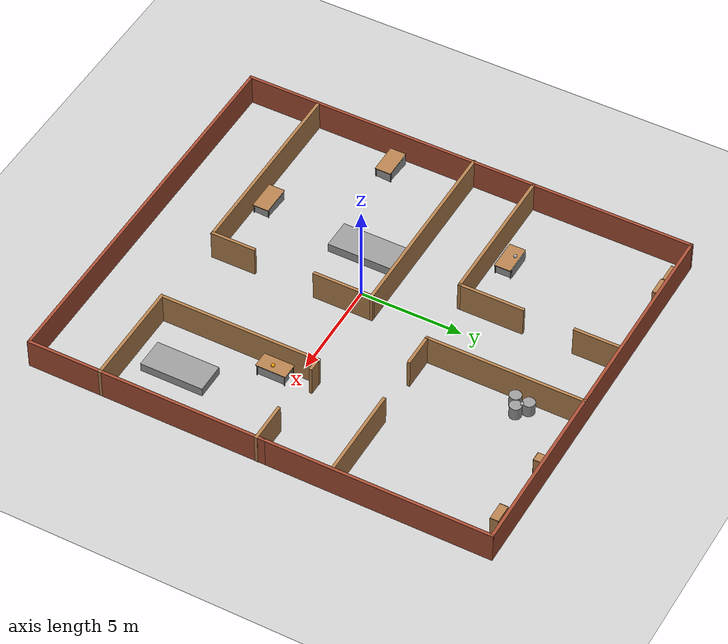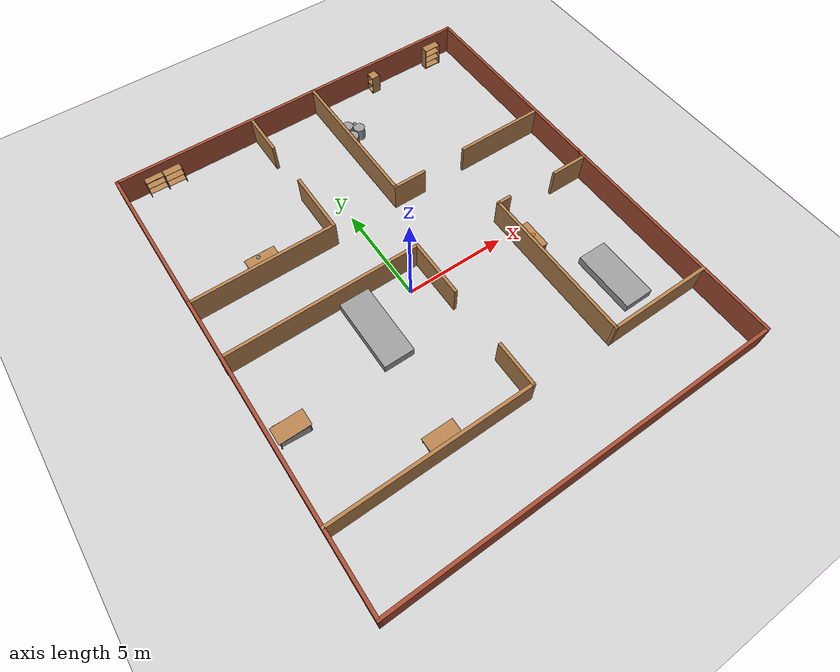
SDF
<sdf version="1.6">
 <world name="default">
  <light name="sun" type="directional">
   <pose>0 0 10 0 -0 0</pose>
   <diffuse>0.8 0.8 0.8 1</diffuse>
   <specular>0.2 0.2 0.2 1</specular>
   <attenuation>
    <range>1000</range>
    <constant>0.9</constant>
    <linear>0.01</linear>
    <quadratic>0.001</quadratic>
   </attenuation>
   <direction>-0.5 0.1 -0.9</direction>
  </light>
  <model name="ground_plane">
   <static>1</static>
   <link name="link">
    <collision name="collision">
     <geometry><plane><normal>0 0 1</normal><size>100 100</size></plane></geometry>
     <surface>
      <contact><collide_bitmask>65535</collide_bitmask></contact>
      <friction><ode><mu>100</mu><mu2>50</mu2></ode></friction>
     </surface>
    </collision>
    <visual name="visual">
     <cast_shadows>0</cast_shadows>
     <geometry><plane><normal>0 0 1</normal><size>100 100</size></plane></geometry>
     <material>
      <script><uri>file://media/materials/scripts/gazebo.material</uri><name>Gazebo/Grey</name></script>
     </material>
    </visual>
   </link>
  </model>
  <gravity>0 0 -9.8</gravity>
  <magnetic_field>6e-06 2.3e-05 -4.2e-05</magnetic_field>
  <atmosphere type="adiabatic"/>
  <physics name="default_physics" default="0" type="ode">
   <max_step_size>0.001</max_step_size>
   <real_time_factor>1</real_time_factor>
   <real_time_update_rate>1000</real_time_update_rate>
  </physics>
  <scene><ambient>0.4 0.4 0.4 1</ambient><background>0.7 0.7 0.7 1</background><shadows>1</shadows></scene>
  <audio><device>default</device></audio>
  <spherical_coordinates>
   <surface_model>EARTH_WGS84</surface_model>
   <latitude_deg>0</latitude_deg>
   <longitude_deg>0</longitude_deg>
   <elevation>0</elevation>
   <heading_deg>0</heading_deg>
  </spherical_coordinates>
  <model name="FetchENV">
   <pose>1.08764 0.75581 -1.01511 0 -0 0</pose>
   <link name="Wall_100">
    <collision name="Wall_100_Collision">
     <geometry><box><size>8 0.15 2.5</size></box></geometry>
     <pose>0 0 1.25 0 -0 0</pose>
    </collision>
    <visual name="Wall_100_Visual">
     <pose>0 0 1.25 0 -0 0</pose>
     <geometry><box><size>8 0.15 2.5</size></box></geometry>
     <material>
      <script><uri>file://media/materials/scripts/gazebo.material</uri><name>Gazebo/Bricks</name></script>
      <ambient>1 1 1 1</ambient>
     </material>
     <meta><layer>0</layer></meta>
    </visual>
    <pose>-9.54309 7.35 0 0 -0 1.5708</pose>
   </link>
   <link name="Wall_101">
    <collision name="Wall_101_Collision">
     <geometry><box><size>19.25 0.15 2.5</size></box></geometry>
     <pose>0 0 1.25 0 -0 0</pose>
    </collision>
    <visual name="Wall_101_Visual">
     <pose>0 0 1.25 0 -0 0</pose>
     <geometry><box><size>19.25 0.15 2.5</size></box></geometry>
     <material>
      <script><uri>file://media/materials/scripts/gazebo.material</uri><name>Gazebo/Bricks</name></script>
      <ambient>1 1 1 1</ambient>
     </material>
     <meta><layer>0</layer></meta>
    </visual>
    <pose>0.006908 11.275 0 0 -0 0</pose>
   </link>
   <link name="Wall_102">
    <collision name="Wall_102_Collision">
     <geometry><box><size>11 0.15 2.5</size></box></geometry>
     <pose>0 0 1.25 0 -0 0</pose>
    </collision>
    <visual name="Wall_102_Visual">
     <pose>0 0 1.25 0 -0 0</pose>
     <geometry><box><size>11 0.15 2.5</size></box></geometry>
     <material>
      <script><uri>file://media/materials/scripts/gazebo.material</uri><name>Gazebo/Bricks</name></script>
      <ambient>1 1 1 1</ambient>
     </material>
     <meta><layer>0</layer></meta>
    </visual>
    <pose>9.55691 5.85 0 0 -0 -1.5708</pose>
   </link>
   <link name="Wall_103">
    <collision name="Wall_103_Collision">
     <geometry><box><size>8.25 0.15 2.5</size></box></geometry>
     <pose>0 0 1.25 0 -0 0</pose>
    </collision>
    <visual name="Wall_103_Visual">
     <pose>0 0 1.25 0 -0 0</pose>
     <geometry><box><size>8.25 0.15 2.5</size></box></geometry>
     <material>
      <script><uri>file://media/materials/scripts/gazebo.material</uri><name>Gazebo/Bricks</name></script>
      <ambient>1 1 1 1</ambient>
     </material>
     <meta><layer>0</layer></meta>
    </visual>
    <pose>9.55691 -3.625 0 0 -0 -1.5708</pose>
   </link>
   <link name="Wall_104">
    <collision name="Wall_104_Collision">
     <geometry><box><size>5.25 0.15 2.5</size></box></geometry>
     <pose>0 0 1.25 0 -0 0</pose>
    </collision>
    <visual name="Wall_104_Visual">
     <pose>0 0 1.25 0 -0 0</pose>
     <geometry><box><size>5.25 0.15 2.5</size></box></geometry>
     <material>
      <script><uri>file://media/materials/scripts/gazebo.material</uri><name>Gazebo/Wood</name></script>
      <ambient>1 1 1 1</ambient>
     </material>
     <meta><layer>0</layer></meta>
    </visual>
    <pose>7.00691 -7.675 0 0 -0 3.14159</pose>
   </link>
   <link name="Wall_108">
    <collision name="Wall_108_Collision">
     <geometry><box><size>11.25 0.15 2.5</size></box></geometry>
     <pose>0 0 1.25 0 -0 0</pose>
    </collision>
    <visual name="Wall_108_Visual">
     <pose>0 0 1.25 0 -0 0</pose>
     <geometry><box><size>11.25 0.15 2.5</size></box></geometry>
     <material>
      <script><uri>file://media/materials/scripts/gazebo.material</uri><name>Gazebo/Bricks</name></script>
      <ambient>1 1 1 1</ambient>
     </material>
     <meta><layer>0</layer></meta>
    </visual>
    <pose>-9.54309 -2.125 0 0 -0 -1.5708</pose>
   </link>
   <link name="Wall_109">
    <collision name="Wall_109_Collision">
     <geometry><box><size>9.75 0.15 2.5</size></box></geometry>
     <pose>0 0 1.25 0 -0 0</pose>
    </collision>
    <visual name="Wall_109_Visual">
     <pose>0 0 1.25 0 -0 0</pose>
     <geometry><box><size>9.75 0.15 2.5</size></box></geometry>
     <material>
      <script><uri>file://media/materials/scripts/gazebo.material</uri><name>Gazebo/Wood</name></script>
      <ambient>1 1 1 1</ambient>
     </material>
     <meta><layer>0</layer></meta>
    </visual>
    <pose>-4.74309 -7.675 0 0 -0 0</pose>
   </link>
   <link name="Wall_111">
    <collision name="Wall_111_Collision">
     <geometry><box><size>2.25 0.15 2.5</size></box></geometry>
     <pose>0 0 1.25 0 -0 0</pose>
    </collision>
    <visual name="Wall_111_Visual">
     <pose>0 0 1.25 0 -0 0</pose>
     <geometry><box><size>2.25 0.15 2.5</size></box></geometry>
     <material>
      <script><uri>file://media/materials/scripts/gazebo.material</uri><name>Gazebo/Wood</name></script>
      <ambient>1 1 1 1</ambient>
     </material>
     <meta><layer>0</layer></meta>
    </visual>
    <pose>0.056908 -6.625 0 0 -0 1.5708</pose>
   </link>
   <link name="Wall_113">
    <collision name="Wall_113_Collision">
     <geometry><box><size>3 0.15 2.5</size></box></geometry>
     <pose>0 0 1.25 0 -0 0</pose>
    </collision>
    <visual name="Wall_113_Visual">
     <pose>0 0 1.25 0 -0 0</pose>
     <geometry><box><size>3 0.15 2.5</size></box></geometry>
     <material>
      <script><uri>file://media/materials/scripts/gazebo.material</uri><name>Gazebo/Wood</name></script>
      <ambient>1 1 1 1</ambient>
     </material>
     <meta><layer>0</layer></meta>
    </visual>
    <pose>0.03172 -1.04948 0 0 -0 1.5708</pose>
   </link>
   <link name="Wall_114">
    <collision name="Wall_114_Collision">
     <geometry><box><size>9.75 0.15 2.5</size></box></geometry>
     <pose>0 0 1.25 0 -0 0</pose>
    </collision>
    <visual name="Wall_114_Visual">
     <pose>0 0 1.25 0 -0 0</pose>
     <geometry><box><size>9.75 0.15 2.5</size></box></geometry>
     <material>
      <script><uri>file://media/materials/scripts/gazebo.material</uri><name>Gazebo/Wood</name></script>
      <ambient>1 1 1 1</ambient>
     </material>
     <meta><layer>0</layer></meta>
    </visual>
    <pose>-4.76828 0.375517 0 0 -0 3.14159</pose>
   </link>
   <link name="Wall_116">
    <collision name="Wall_116_Collision">
     <geometry><box><size>8 0.15 2.5</size></box></geometry>
     <pose>0 0 1.25 0 -0 0</pose>
    </collision>
    <visual name="Wall_116_Visual">
     <pose>0 0 1.25 0 -0 0</pose>
     <geometry><box><size>8 0.15 2.5</size></box></geometry>
     <material>
      <script><uri>file://media/materials/scripts/gazebo.material</uri><name>Gazebo/Wood</name></script>
      <ambient>1 1 1 1</ambient>
     </material>
     <meta><layer>0</layer></meta>
    </visual>
    <pose>4.45691 -3.75 0 0 -0 1.5708</pose>
   </link>
   <link name="Wall_120">
    <collision name="Wall_120_Collision">
     <geometry><box><size>0.75 0.15 2.5</size></box></geometry>
     <pose>0 0 1.25 0 -0 0</pose>
    </collision>
    <visual name="Wall_120_Visual">
     <pose>0 0 1.25 0 -0 0</pose>
     <geometry><box><size>0.75 0.15 2.5</size></box></geometry>
     <material>
      <script><uri>file://media/materials/scripts/gazebo.material</uri><name>Gazebo/Wood</name></script>
      <ambient>1 1 1 1</ambient>
     </material>
     <meta><layer>0</layer></meta>
    </visual>
    <pose>4.75691 0.175 0 0 -0 0</pose>
   </link>
   <link name="Wall_122">
    <collision name="Wall_122_Collision">
     <geometry><box><size>2 0.15 2.5</size></box></geometry>
     <pose>0 0 1.25 0 -0 0</pose>
    </collision>
    <visual name="Wall_122_Visual">
     <pose>0 0 1.25 0 -0 0</pose>
     <geometry><box><size>2 0.15 2.5</size></box></geometry>
     <material>
      <script><uri>file://media/materials/scripts/gazebo.material</uri><name>Gazebo/Wood</name></script>
      <ambient>1 1 1 1</ambient>
     </material>
     <meta><layer>0</layer></meta>
    </visual>
    <pose>8.64328 0.074218 0 0 -0 0</pose>
   </link>
   <link name="Wall_126">
    <collision name="Wall_126_Collision">
     <geometry><box><size>2.25 0.15 2.5</size></box></geometry>
     <pose>0 0 1.25 0 -0 0</pose>
    </collision>
    <visual name="Wall_126_Visual">
     <pose>0 0 1.25 0 -0 0</pose>
     <geometry><box><size>2.25 0.15 2.5</size></box></geometry>
     <material>
      <script><uri>file://media/materials/scripts/gazebo.material</uri><name>Gazebo/Wood</name></script>
      <ambient>1 1 1 1</ambient>
     </material>
     <meta><layer>0</layer></meta>
    </visual>
    <pose>-2.47722 10.1244 0 0 -0 -1.5708</pose>
   </link>
   <link name="Wall_128">
    <collision name="Wall_128_Collision">
     <geometry><box><size>7.75 0.15 2.5</size></box></geometry>
     <pose>0 0 1.25 0 -0 0</pose>
    </collision>
    <visual name="Wall_128_Visual">
     <pose>0 0 1.25 0 -0 0</pose>
     <geometry><box><size>7.75 0.15 2.5</size></box></geometry>
     <material>
      <script><uri>file://media/materials/scripts/gazebo.material</uri><name>Gazebo/Wood</name></script>
      <ambient>1 1 1 1</ambient>
     </material>
     <meta><layer>0</layer></meta>
    </visual>
    <pose>1.0586 7.46742 0 0 -0 -1.5708</pose>
   </link>
   <link name="Wall_129">
    <collision name="Wall_129_Collision">
     <geometry><box><size>1.75 0.15 2.5</size></box></geometry>
     <pose>0 0 1.25 0 -0 0</pose>
    </collision>
    <visual name="Wall_129_Visual">
     <pose>0 0 1.25 0 -0 0</pose>
     <geometry><box><size>1.75 0.15 2.5</size></box></geometry>
     <material>
      <script><uri>file://media/materials/scripts/gazebo.material</uri><name>Gazebo/Wood</name></script>
      <ambient>1 1 1 1</ambient>
     </material>
     <meta><layer>0</layer></meta>
    </visual>
    <pose>1.8586 3.66742 0 0 -0 0</pose>
   </link>
   <link name="Wall_131">
    <collision name="Wall_131_Collision">
     <geometry><box><size>4.5 0.15 2.5</size></box></geometry>
     <pose>0 0 1.25 0 -0 0</pose>
    </collision>
    <visual name="Wall_131_Visual">
     <pose>0 0 1.25 0 -0 0</pose>
     <geometry><box><size>4.5 0.15 2.5</size></box></geometry>
     <material>
      <script><uri>file://media/materials/scripts/gazebo.material</uri><name>Gazebo/Wood</name></script>
      <ambient>1 1 1 1</ambient>
     </material>
     <meta><layer>0</layer></meta>
    </visual>
    <pose>7.2579 3.73055 0 0 -0 3.14159</pose>
   </link>
   <link name="Wall_140">
    <collision name="Wall_140_Collision">
     <geometry><box><size>3.75 0.15 2.5</size></box></geometry>
     <pose>0 0 1.25 0 -0 0</pose>
    </collision>
    <visual name="Wall_140_Visual">
     <pose>0 0 1.25 0 -0 0</pose>
     <geometry><box><size>3.75 0.15 2.5</size></box></geometry>
     <material>
      <script><uri>file://media/materials/scripts/gazebo.material</uri><name>Gazebo/Bricks</name></script>
      <ambient>1 1 1 1</ambient>
     </material>
     <meta><layer>0</layer></meta>
    </visual>
    <pose>-9.54309 -9.475 0 0 -0 -1.5708</pose>
   </link>
   <link name="Wall_141">
    <collision name="Wall_141_Collision">
     <geometry><box><size>19.25 0.15 2.5</size></box></geometry>
     <pose>0 0 1.25 0 -0 0</pose>
    </collision>
    <visual name="Wall_141_Visual">
     <pose>0 0 1.25 0 -0 0</pose>
     <geometry><box><size>19.25 0.15 2.5</size></box></geometry>
     <material>
      <script><uri>file://media/materials/scripts/gazebo.material</uri><name>Gazebo/Bricks</name></script>
      <ambient>1 1 1 1</ambient>
     </material>
     <meta><layer>0</layer></meta>
    </visual>
    <pose>0.006908 -11.275 0 0 -0 0</pose>
   </link>
   <link name="Wall_143">
    <collision name="Wall_143_Collision">
     <geometry><box><size>3.75 0.15 2.5</size></box></geometry>
     <pose>0 0 1.25 0 -0 0</pose>
    </collision>
    <visual name="Wall_143_Visual">
     <pose>0 0 1.25 0 -0 0</pose>
     <geometry><box><size>3.75 0.15 2.5</size></box></geometry>
     <material>
      <script><uri>file://media/materials/scripts/gazebo.material</uri><name>Gazebo/Bricks</name></script>
      <ambient>1 1 1 1</ambient>
     </material>
     <meta><layer>0</layer></meta>
    </visual>
    <pose>9.55691 -9.475 0 0 -0 1.5708</pose>
   </link>
   <link name="Wall_98">
    <collision name="Wall_98_Collision">
     <geometry><box><size>3.25 0.15 2.5</size></box></geometry>
     <pose>0 0 1.25 0 -0 0</pose>
    </collision>
    <visual name="Wall_98_Visual">
     <pose>0 0 1.25 0 -0 0</pose>
     <geometry><box><size>3.25 0.15 2.5</size></box></geometry>
     <material>
      <script><uri>file://media/materials/scripts/gazebo.material</uri><name>Gazebo/Wood</name></script>
      <ambient>1 1 1 1</ambient>
     </material>
     <meta><layer>0</layer></meta>
    </visual>
    <pose>-2.44309 4.975 0 0 -0 -1.5708</pose>
   </link>
   <link name="Wall_99">
    <collision name="Wall_99_Collision">
     <geometry><box><size>7.25 0.15 2.5</size></box></geometry>
     <pose>0 0 1.25 0 -0 0</pose>
    </collision>
    <visual name="Wall_99_Visual">
     <pose>0 0 1.25 0 -0 0</pose>
     <geometry><box><size>7.25 0.15 2.5</size></box></geometry>
     <material>
      <script><uri>file://media/materials/scripts/gazebo.material</uri><name>Gazebo/Wood</name></script>
      <ambient>1 1 1 1</ambient>
     </material>
     <meta><layer>0</layer></meta>
    </visual>
    <pose>-5.99309 3.425 0 0 -0 3.14159</pose>
   </link>
   <static>1</static>
  </model>
  <model name="table">
   <static>1</static>
   <link name="link">
    <collision name="surface">
     <pose>0 0 1 0 -0 0</pose>
     <geometry><box><size>1.5 0.8 0.03</size></box></geometry>
     <surface><friction><ode><mu>0.6</mu><mu2>0.6</mu2></ode></friction></surface>
    </collision>
    <visual name="visual1">
     <pose>0 0 1 0 -0 0</pose>
     <geometry><box><size>1.5 0.8 0.03</size></box></geometry>
     <material>
      <script><uri>file://media/materials/scripts/gazebo.material</uri><name>Gazebo/Wood</name></script>
     </material>
    </visual>
    <collision name="front_left_leg">
     <pose>0.68 0.38 0.5 0 -0 0</pose>
     <geometry><cylinder><radius>0.02</radius><length>1</length></cylinder></geometry>
    </collision>
    <visual name="front_left_leg">
     <pose>0.68 0.38 0.5 0 -0 0</pose>
     <geometry><cylinder><radius>0.02</radius><length>1</length></cylinder></geometry>
     <material>
      <script><uri>file://media/materials/scripts/gazebo.material</uri><name>Gazebo/Grey</name></script>
     </material>
    </visual>
    <collision name="front_right_leg">
     <pose>0.68 -0.38 0.5 0 -0 0</pose>
     <geometry><cylinder><radius>0.02</radius><length>1</length></cylinder></geometry>
    </collision>
    <visual name="front_right_leg">
     <pose>0.68 -0.38 0.5 0 -0 0</pose>
     <geometry><cylinder><radius>0.02</radius><length>1</length></cylinder></geometry>
     <material>
      <script><uri>file://media/materials/scripts/gazebo.material</uri><name>Gazebo/Grey</name></script>
     </material>
    </visual>
    <collision name="back_right_leg">
     <pose>-0.68 -0.38 0.5 0 -0 0</pose>
     <geometry><cylinder><radius>0.02</radius><length>1</length></cylinder></geometry>
    </collision>
    <visual name="back_right_leg">
     <pose>-0.68 -0.38 0.5 0 -0 0</pose>
     <geometry><cylinder><radius>0.02</radius><length>1</length></cylinder></geometry>
     <material>
      <script><uri>file://media/materials/scripts/gazebo.material</uri><name>Gazebo/Grey</name></script>
     </material>
    </visual>
    <collision name="back_left_leg">
     <pose>-0.68 0.38 0.5 0 -0 0</pose>
     <geometry><cylinder><radius>0.02</radius><length>1</length></cylinder></geometry>
    </collision>
    <visual name="back_left_leg">
     <pose>-0.68 0.38 0.5 0 -0 0</pose>
     <geometry><cylinder><radius>0.02</radius><length>1</length></cylinder></geometry>
     <material>
      <script><uri>file://media/materials/scripts/gazebo.material</uri><name>Gazebo/Grey</name></script>
     </material>
    </visual>
   </link>
   <pose>-4.70448 4.96068 -0.478657 0 -0 0</pose>
  </model>
  <model name="bookshelf">
   <static>1</static>
   <link name="link">
    <inertial><mass>1</mass></inertial>
    <collision name="back">
     <pose>0 0.005 0.6 0 -0 0</pose>
     <geometry><box><size>0.9 0.01 1.2</size></box></geometry>
    </collision>
    <visual name="visual1">
     <pose>0 0.005 0.6 0 -0 0</pose>
     <geometry><box><size>0.9 0.01 1.2</size></box></geometry>
     <material>
      <script><uri>file://media/materials/scripts/gazebo.material</uri><name>Gazebo/Wood</name></script>
     </material>
    </visual>
    <collision name="left_side">
     <pose>0.45 -0.195 0.6 0 -0 0</pose>
     <geometry><box><size>0.02 0.4 1.2</size></box></geometry>
    </collision>
    <visual name="visual2">
     <pose>0.45 -0.195 0.6 0 -0 0</pose>
     <geometry><box><size>0.02 0.4 1.2</size></box></geometry>
     <material>
      <script><uri>file://media/materials/scripts/gazebo.material</uri><name>Gazebo/Wood</name></script>
     </material>
    </visual>
    <collision name="right_side">
     <pose>-0.45 -0.195 0.6 0 -0 0</pose>
     <geometry><box><size>0.02 0.4 1.2</size></box></geometry>
    </collision>
    <visual name="visual3">
     <pose>-0.45 -0.195 0.6 0 -0 0</pose>
     <geometry><box><size>0.02 0.4 1.2</size></box></geometry>
     <material>
      <script><uri>file://media/materials/scripts/gazebo.material</uri><name>Gazebo/Wood</name></script>
     </material>
    </visual>
    <collision name="bottom">
     <pose>0 -0.195 0.03 0 -0 0</pose>
     <geometry><box><size>0.88 0.4 0.06</size></box></geometry>
    </collision>
    <visual name="visual4">
     <pose>0 -0.195 0.03 0 -0 0</pose>
     <geometry><box><size>0.88 0.4 0.06</size></box></geometry>
     <material>
      <script><uri>file://media/materials/scripts/gazebo.material</uri><name>Gazebo/Wood</name></script>
     </material>
    </visual>
    <collision name="top">
     <pose>0 -0.195 1.19 0 -0 0</pose>
     <geometry><box><size>0.88 0.4 0.02</size></box></geometry>
    </collision>
    <visual name="visual5">
     <pose>0 -0.195 1.19 0 -0 0</pose>
     <geometry><box><size>0.88 0.4 0.02</size></box></geometry>
     <material>
      <script><uri>file://media/materials/scripts/gazebo.material</uri><name>Gazebo/Wood</name></script>
     </material>
    </visual>
    <collision name="low_shelf">
     <pose>0 -0.195 0.43 0 -0 0</pose>
     <geometry><box><size>0.88 0.4 0.02</size></box></geometry>
    </collision>
    <visual name="visual6">
     <pose>0 -0.195 0.43 0 -0 0</pose>
     <geometry><box><size>0.88 0.4 0.02</size></box></geometry>
     <material>
      <script><uri>file://media/materials/scripts/gazebo.material</uri><name>Gazebo/Wood</name></script>
     </material>
    </visual>
    <collision name="high_shelf">
     <pose>0 -0.195 0.8 0 -0 0</pose>
     <geometry><box><size>0.88 0.4 0.02</size></box></geometry>
    </collision>
    <visual name="visual7">
     <pose>0 -0.195 0.8 0 -0 0</pose>
     <geometry><box><size>0.88 0.4 0.02</size></box></geometry>
     <material>
      <script><uri>file://media/materials/scripts/gazebo.material</uri><name>Gazebo/Wood</name></script>
     </material>
    </visual>
   </link>
   <pose>9.1929 11.799 0 0 -0 0</pose>
  </model>
  <model name="cabinet">
   <static>1</static>
   <link name="cabinet_bottom_plate">
    <inertial>
     <pose>0 0 -1 0 -0 0</pose>
     <inertia><ixx>2.05</ixx><ixy>0</ixy><ixz>0</ixz><iyy>2.05</iyy><iyz>0</iyz><izz>2.05</izz></inertia>
     <mass>25</mass>
    </inertial>
    <collision name="cabinet_bottom_plate_geom">
     <pose>0 0 0.01 0 -0 0</pose>
     <geometry><box><size>0.45 0.45 0.02</size></box></geometry>
    </collision>
    <visual name="cabinet_bottom_plate_geom_visual">
     <pose>0 0 0.01 0 -0 0</pose>
     <geometry><box><size>0.45 0.45 0.02</size></box></geometry>
     <material>
      <script><uri>file://media/materials/scripts/gazebo.material</uri><name>Gazebo/Wood</name></script>
     </material>
    </visual>
    <collision name="cabinet_bottom_plate_geom_cabinet_back_plate">
     <pose>0.235 0 0.51 0 -0 0</pose>
     <geometry><box><size>0.02 0.45 1.02</size></box></geometry>
    </collision>
    <visual name="cabinet_bottom_plate_geom_cabinet_back_plate_visual">
     <pose>0.235 0 0.51 0 -0 0</pose>
     <geometry><box><size>0.02 0.45 1.02</size></box></geometry>
     <material>
      <script><uri>file://media/materials/scripts/gazebo.material</uri><name>Gazebo/Wood</name></script>
     </material>
    </visual>
    <collision name="cabinet_bottom_plate_geom_cabinet_left_plate">
     <pose>0 0.235 0.51 0 -0 0</pose>
     <geometry><box><size>0.45 0.02 1.02</size></box></geometry>
    </collision>
    <visual name="cabinet_bottom_plate_geom_cabinet_left_plate_visual">
     <pose>0 0.235 0.51 0 -0 0</pose>
     <geometry><box><size>0.45 0.02 1.02</size></box></geometry>
     <material>
      <script><uri>file://media/materials/scripts/gazebo.material</uri><name>Gazebo/Wood</name></script>
     </material>
    </visual>
    <collision name="cabinet_bottom_plate_geom_cabinet_middle_plate">
     <pose>0 0 0.51 0 -0 0</pose>
     <geometry><box><size>0.45 0.45 0.02</size></box></geometry>
    </collision>
    <visual name="cabinet_bottom_plate_geom_cabinet_middle_plate_visual">
     <pose>0 0 0.51 0 -0 0</pose>
     <geometry><box><size>0.45 0.45 0.02</size></box></geometry>
     <material>
      <script><uri>file://media/materials/scripts/gazebo.material</uri><name>Gazebo/Wood</name></script>
     </material>
    </visual>
    <collision name="cabinet_bottom_plate_geom_cabinet_right_plate">
     <pose>0 -0.235 0.51 0 -0 0</pose>
     <geometry><box><size>0.45 0.02 1.02</size></box></geometry>
    </collision>
    <visual name="cabinet_bottom_plate_geom_cabinet_right_plate_visual">
     <pose>0 -0.235 0.51 0 -0 0</pose>
     <geometry><box><size>0.45 0.02 1.02</size></box></geometry>
     <material>
      <script><uri>file://media/materials/scripts/gazebo.material</uri><name>Gazebo/Wood</name></script>
     </material>
    </visual>
    <collision name="cabinet_bottom_plate_geom_cabinet_top_plate">
     <pose>0 0 1.01 0 -0 0</pose>
     <geometry><box><size>0.45 0.45 0.02</size></box></geometry>
    </collision>
    <visual name="cabinet_bottom_plate_geom_cabinet_top_plate_visual">
     <pose>0 0 1.01 0 -0 0</pose>
     <geometry><box><size>0.45 0.45 0.02</size></box></geometry>
     <material>
      <script><uri>file://media/materials/scripts/gazebo.material</uri><name>Gazebo/Wood</name></script>
     </material>
    </visual>
   </link>
   <pose>5.55463 11.6901 0 0 -0 0</pose>
  </model>
  <model name="bookshelf_clone">
   <static>1</static>
   <link name="link">
    <inertial><mass>1</mass></inertial>
    <collision name="back">
     <pose>0 0.005 0.6 0 -0 0</pose>
     <geometry><box><size>0.9 0.01 1.2</size></box></geometry>
    </collision>
    <visual name="visual1">
     <pose>0 0.005 0.6 0 -0 0</pose>
     <geometry><box><size>0.9 0.01 1.2</size></box></geometry>
     <material>
      <script><uri>file://media/materials/scripts/gazebo.material</uri><name>Gazebo/Wood</name></script>
     </material>
    </visual>
    <collision name="left_side">
     <pose>0.45 -0.195 0.6 0 -0 0</pose>
     <geometry><box><size>0.02 0.4 1.2</size></box></geometry>
    </collision>
    <visual name="visual2">
     <pose>0.45 -0.195 0.6 0 -0 0</pose>
     <geometry><box><size>0.02 0.4 1.2</size></box></geometry>
     <material>
      <script><uri>file://media/materials/scripts/gazebo.material</uri><name>Gazebo/Wood</name></script>
     </material>
    </visual>
    <collision name="right_side">
     <pose>-0.45 -0.195 0.6 0 -0 0</pose>
     <geometry><box><size>0.02 0.4 1.2</size></box></geometry>
    </collision>
    <visual name="visual3">
     <pose>-0.45 -0.195 0.6 0 -0 0</pose>
     <geometry><box><size>0.02 0.4 1.2</size></box></geometry>
     <material>
      <script><uri>file://media/materials/scripts/gazebo.material</uri><name>Gazebo/Wood</name></script>
     </material>
    </visual>
    <collision name="bottom">
     <pose>0 -0.195 0.03 0 -0 0</pose>
     <geometry><box><size>0.88 0.4 0.06</size></box></geometry>
    </collision>
    <visual name="visual4">
     <pose>0 -0.195 0.03 0 -0 0</pose>
     <geometry><box><size>0.88 0.4 0.06</size></box></geometry>
     <material>
      <script><uri>file://media/materials/scripts/gazebo.material</uri><name>Gazebo/Wood</name></script>
     </material>
    </visual>
    <collision name="top">
     <pose>0 -0.195 1.19 0 -0 0</pose>
     <geometry><box><size>0.88 0.4 0.02</size></box></geometry>
    </collision>
    <visual name="visual5">
     <pose>0 -0.195 1.19 0 -0 0</pose>
     <geometry><box><size>0.88 0.4 0.02</size></box></geometry>
     <material>
      <script><uri>file://media/materials/scripts/gazebo.material</uri><name>Gazebo/Wood</name></script>
     </material>
    </visual>
    <collision name="low_shelf">
     <pose>0 -0.195 0.43 0 -0 0</pose>
     <geometry><box><size>0.88 0.4 0.02</size></box></geometry>
    </collision>
    <visual name="visual6">
     <pose>0 -0.195 0.43 0 -0 0</pose>
     <geometry><box><size>0.88 0.4 0.02</size></box></geometry>
     <material>
      <script><uri>file://media/materials/scripts/gazebo.material</uri><name>Gazebo/Wood</name></script>
     </material>
    </visual>
    <collision name="high_shelf">
     <pose>0 -0.195 0.8 0 -0 0</pose>
     <geometry><box><size>0.88 0.4 0.02</size></box></geometry>
    </collision>
    <visual name="visual7">
     <pose>0 -0.195 0.8 0 -0 0</pose>
     <geometry><box><size>0.88 0.4 0.02</size></box></geometry>
     <material>
      <script><uri>file://media/materials/scripts/gazebo.material</uri><name>Gazebo/Wood</name></script>
     </material>
    </visual>
   </link>
   <pose>-6.86254 12.0257 -0.226199 0 -0 0</pose>
  </model>
  <model name="bookshelf_clone_0">
   <static>1</static>
   <link name="link">
    <inertial><mass>1</mass></inertial>
    <collision name="back">
     <pose>0 0.005 0.6 0 -0 0</pose>
     <geometry><box><size>0.9 0.01 1.2</size></box></geometry>
    </collision>
    <visual name="visual1">
     <pose>0 0.005 0.6 0 -0 0</pose>
     <geometry><box><size>0.9 0.01 1.2</size></box></geometry>
     <material>
      <script><uri>file://media/materials/scripts/gazebo.material</uri><name>Gazebo/Wood</name></script>
     </material>
    </visual>
    <collision name="left_side">
     <pose>0.45 -0.195 0.6 0 -0 0</pose>
     <geometry><box><size>0.02 0.4 1.2</size></box></geometry>
    </collision>
    <visual name="visual2">
     <pose>0.45 -0.195 0.6 0 -0 0</pose>
     <geometry><box><size>0.02 0.4 1.2</size></box></geometry>
     <material>
      <script><uri>file://media/materials/scripts/gazebo.material</uri><name>Gazebo/Wood</name></script>
     </material>
    </visual>
    <collision name="right_side">
     <pose>-0.45 -0.195 0.6 0 -0 0</pose>
     <geometry><box><size>0.02 0.4 1.2</size></box></geometry>
    </collision>
    <visual name="visual3">
     <pose>-0.45 -0.195 0.6 0 -0 0</pose>
     <geometry><box><size>0.02 0.4 1.2</size></box></geometry>
     <material>
      <script><uri>file://media/materials/scripts/gazebo.material</uri><name>Gazebo/Wood</name></script>
     </material>
    </visual>
    <collision name="bottom">
     <pose>0 -0.195 0.03 0 -0 0</pose>
     <geometry><box><size>0.88 0.4 0.06</size></box></geometry>
    </collision>
    <visual name="visual4">
     <pose>0 -0.195 0.03 0 -0 0</pose>
     <geometry><box><size>0.88 0.4 0.06</size></box></geometry>
     <material>
      <script><uri>file://media/materials/scripts/gazebo.material</uri><name>Gazebo/Wood</name></script>
     </material>
    </visual>
    <collision name="top">
     <pose>0 -0.195 1.19 0 -0 0</pose>
     <geometry><box><size>0.88 0.4 0.02</size></box></geometry>
    </collision>
    <visual name="visual5">
     <pose>0 -0.195 1.19 0 -0 0</pose>
     <geometry><box><size>0.88 0.4 0.02</size></box></geometry>
     <material>
      <script><uri>file://media/materials/scripts/gazebo.material</uri><name>Gazebo/Wood</name></script>
     </material>
    </visual>
    <collision name="low_shelf">
     <pose>0 -0.195 0.43 0 -0 0</pose>
     <geometry><box><size>0.88 0.4 0.02</size></box></geometry>
    </collision>
    <visual name="visual6">
     <pose>0 -0.195 0.43 0 -0 0</pose>
     <geometry><box><size>0.88 0.4 0.02</size></box></geometry>
     <material>
      <script><uri>file://media/materials/scripts/gazebo.material</uri><name>Gazebo/Wood</name></script>
     </material>
    </visual>
    <collision name="high_shelf">
     <pose>0 -0.195 0.8 0 -0 0</pose>
     <geometry><box><size>0.88 0.4 0.02</size></box></geometry>
    </collision>
    <visual name="visual7">
     <pose>0 -0.195 0.8 0 -0 0</pose>
     <geometry><box><size>0.88 0.4 0.02</size></box></geometry>
     <material>
      <script><uri>file://media/materials/scripts/gazebo.material</uri><name>Gazebo/Wood</name></script>
     </material>
    </visual>
   </link>
   <pose>-5.93656 11.9662 -0.233324 0 -0 0</pose>
  </model>
  <model name="table_0">
   <static>1</static>
   <link name="link">
    <collision name="surface">
     <pose>0 0 1 0 -0 0</pose>
     <geometry><box><size>1.5 0.8 0.03</size></box></geometry>
     <surface><friction><ode><mu>0.6</mu><mu2>0.6</mu2></ode></friction></surface>
    </collision>
    <visual name="visual1">
     <pose>0 0 1 0 -0 0</pose>
     <geometry><box><size>1.5 0.8 0.03</size></box></geometry>
     <material>
      <script><uri>file://media/materials/scripts/gazebo.material</uri><name>Gazebo/Wood</name></script>
     </material>
    </visual>
    <collision name="front_left_leg">
     <pose>0.68 0.38 0.5 0 -0 0</pose>
     <geometry><cylinder><radius>0.02</radius><length>1</length></cylinder></geometry>
    </collision>
    <visual name="front_left_leg">
     <pose>0.68 0.38 0.5 0 -0 0</pose>
     <geometry><cylinder><radius>0.02</radius><length>1</length></cylinder></geometry>
     <material>
      <script><uri>file://media/materials/scripts/gazebo.material</uri><name>Gazebo/Grey</name></script>
     </material>
    </visual>
    <collision name="front_right_leg">
     <pose>0.68 -0.38 0.5 0 -0 0</pose>
     <geometry><cylinder><radius>0.02</radius><length>1</length></cylinder></geometry>
    </collision>
    <visual name="front_right_leg">
     <pose>0.68 -0.38 0.5 0 -0 0</pose>
     <geometry><cylinder><radius>0.02</radius><length>1</length></cylinder></geometry>
     <material>
      <script><uri>file://media/materials/scripts/gazebo.material</uri><name>Gazebo/Grey</name></script>
     </material>
    </visual>
    <collision name="back_right_leg">
     <pose>-0.68 -0.38 0.5 0 -0 0</pose>
     <geometry><cylinder><radius>0.02</radius><length>1</length></cylinder></geometry>
    </collision>
    <visual name="back_right_leg">
     <pose>-0.68 -0.38 0.5 0 -0 0</pose>
     <geometry><cylinder><radius>0.02</radius><length>1</length></cylinder></geometry>
     <material>
      <script><uri>file://media/materials/scripts/gazebo.material</uri><name>Gazebo/Grey</name></script>
     </material>
    </visual>
    <collision name="back_left_leg">
     <pose>-0.68 0.38 0.5 0 -0 0</pose>
     <geometry><cylinder><radius>0.02</radius><length>1</length></cylinder></geometry>
    </collision>
    <visual name="back_left_leg">
     <pose>-0.68 0.38 0.5 0 -0 0</pose>
     <geometry><cylinder><radius>0.02</radius><length>1</length></cylinder></geometry>
     <material>
      <script><uri>file://media/materials/scripts/gazebo.material</uri><name>Gazebo/Grey</name></script>
     </material>
    </visual>
   </link>
   <pose>-2.82104 -6.35647 -0.515612 0 -0 0</pose>
  </model>
  <model name="table_0_clone">
   <static>1</static>
   <link name="link">
    <collision name="surface">
     <pose>0 0 1 0 -0 0</pose>
     <geometry><box><size>1.5 0.8 0.03</size></box></geometry>
     <surface><friction><ode><mu>0.6</mu><mu2>0.6</mu2></ode></friction></surface>
    </collision>
    <visual name="visual1">
     <pose>0 0 1 0 -0 0</pose>
     <geometry><box><size>1.5 0.8 0.03</size></box></geometry>
     <material>
      <script><uri>file://media/materials/scripts/gazebo.material</uri><name>Gazebo/Wood</name></script>
     </material>
    </visual>
    <collision name="front_left_leg">
     <pose>0.68 0.38 0.5 0 -0 0</pose>
     <geometry><cylinder><radius>0.02</radius><length>1</length></cylinder></geometry>
    </collision>
    <visual name="front_left_leg">
     <pose>0.68 0.38 0.5 0 -0 0</pose>
     <geometry><cylinder><radius>0.02</radius><length>1</length></cylinder></geometry>
     <material>
      <script><uri>file://media/materials/scripts/gazebo.material</uri><name>Gazebo/Grey</name></script>
     </material>
    </visual>
    <collision name="front_right_leg">
     <pose>0.68 -0.38 0.5 0 -0 0</pose>
     <geometry><cylinder><radius>0.02</radius><length>1</length></cylinder></geometry>
    </collision>
    <visual name="front_right_leg">
     <pose>0.68 -0.38 0.5 0 -0 0</pose>
     <geometry><cylinder><radius>0.02</radius><length>1</length></cylinder></geometry>
     <material>
      <script><uri>file://media/materials/scripts/gazebo.material</uri><name>Gazebo/Grey</name></script>
     </material>
    </visual>
    <collision name="back_right_leg">
     <pose>-0.68 -0.38 0.5 0 -0 0</pose>
     <geometry><cylinder><radius>0.02</radius><length>1</length></cylinder></geometry>
    </collision>
    <visual name="back_right_leg">
     <pose>-0.68 -0.38 0.5 0 -0 0</pose>
     <geometry><cylinder><radius>0.02</radius><length>1</length></cylinder></geometry>
     <material>
      <script><uri>file://media/materials/scripts/gazebo.material</uri><name>Gazebo/Grey</name></script>
     </material>
    </visual>
    <collision name="back_left_leg">
     <pose>-0.68 0.38 0.5 0 -0 0</pose>
     <geometry><cylinder><radius>0.02</radius><length>1</length></cylinder></geometry>
    </collision>
    <visual name="back_left_leg">
     <pose>-0.68 0.38 0.5 0 -0 0</pose>
     <geometry><cylinder><radius>0.02</radius><length>1</length></cylinder></geometry>
     <material>
      <script><uri>file://media/materials/scripts/gazebo.material</uri><name>Gazebo/Grey</name></script>
     </material>
    </visual>
   </link>
   <pose>-7.51957 -2.63905 -0.465984 0 -0 0</pose>
  </model>
  <model name="table_1">
   <static>1</static>
   <link name="link">
    <collision name="surface">
     <pose>0 0 1 0 -0 0</pose>
     <geometry><box><size>1.5 0.8 0.03</size></box></geometry>
     <surface><friction><ode><mu>0.6</mu><mu2>0.6</mu2></ode></friction></surface>
    </collision>
    <visual name="visual1">
     <pose>0 0 1 0 -0 0</pose>
     <geometry><box><size>1.5 0.8 0.03</size></box></geometry>
     <material>
      <script><uri>file://media/materials/scripts/gazebo.material</uri><name>Gazebo/Wood</name></script>
     </material>
    </visual>
    <collision name="front_left_leg">
     <pose>0.68 0.38 0.5 0 -0 0</pose>
     <geometry><cylinder><radius>0.02</radius><length>1</length></cylinder></geometry>
    </collision>
    <visual name="front_left_leg">
     <pose>0.68 0.38 0.5 0 -0 0</pose>
     <geometry><cylinder><radius>0.02</radius><length>1</length></cylinder></geometry>
     <material>
      <script><uri>file://media/materials/scripts/gazebo.material</uri><name>Gazebo/Grey</name></script>
     </material>
    </visual>
    <collision name="front_right_leg">
     <pose>0.68 -0.38 0.5 0 -0 0</pose>
     <geometry><cylinder><radius>0.02</radius><length>1</length></cylinder></geometry>
    </collision>
    <visual name="front_right_leg">
     <pose>0.68 -0.38 0.5 0 -0 0</pose>
     <geometry><cylinder><radius>0.02</radius><length>1</length></cylinder></geometry>
     <material>
      <script><uri>file://media/materials/scripts/gazebo.material</uri><name>Gazebo/Grey</name></script>
     </material>
    </visual>
    <collision name="back_right_leg">
     <pose>-0.68 -0.38 0.5 0 -0 0</pose>
     <geometry><cylinder><radius>0.02</radius><length>1</length></cylinder></geometry>
    </collision>
    <visual name="back_right_leg">
     <pose>-0.68 -0.38 0.5 0 -0 0</pose>
     <geometry><cylinder><radius>0.02</radius><length>1</length></cylinder></geometry>
     <material>
      <script><uri>file://media/materials/scripts/gazebo.material</uri><name>Gazebo/Grey</name></script>
     </material>
    </visual>
    <collision name="back_left_leg">
     <pose>-0.68 0.38 0.5 0 -0 0</pose>
     <geometry><cylinder><radius>0.02</radius><length>1</length></cylinder></geometry>
    </collision>
    <visual name="back_left_leg">
     <pose>-0.68 0.38 0.5 0 -0 0</pose>
     <geometry><cylinder><radius>0.02</radius><length>1</length></cylinder></geometry>
     <material>
      <script><uri>file://media/materials/scripts/gazebo.material</uri><name>Gazebo/Grey</name></script>
     </material>
    </visual>
   </link>
   <pose>6.02657 -0.949162 -0.440273 0 0 -1.57372</pose>
  </model>
  <model name="AppleLeaf">
   <static>1</static>
   <link name="link">
    <inertial>
     <mass>0.002</mass>
     <inertia>
      <ixx>3.41333e-07</ixx>
      <ixy>0</ixy>
      <ixz>0</ixz>
      <iyy>3.41333e-07</iyy>
      <iyz>0</iyz>
      <izz>3.41333e-07</izz>
     </inertia>
    </inertial>
    <collision name="person">
     <geometry>
      <mesh><uri>model://AppleLeaf/meshes/AppleLeaf.dae</uri><scale>0.002 0.002 0.002</scale></mesh>
     </geometry>
     <surface>
      <friction><ode><mu>0.01</mu><mu2>0.01</mu2></ode></friction>
      <contact><ode><kp>1e+07</kp><kd>1e+07</kd><min_depth>0.001</min_depth><max_vel>1.1</max_vel></ode></contact>
     </surface>
    </collision>
    <visual name="visual">
     <geometry>
      <mesh><uri>model://AppleLeaf/meshes/AppleLeaf.dae</uri><scale>0.002 0.002 0.002</scale></mesh>
     </geometry>
    </visual>
   </link>
   <pose>3 9.50828 0.751087 0 -0 0</pose>
  </model>
  <model name="Orange">
   <static>1</static>
   <link name="link">
    <inertial>
     <mass>0.002</mass>
     <inertia>
      <ixx>3.41333e-07</ixx>
      <ixy>0</ixy>
      <ixz>0</ixz>
      <iyy>3.41333e-07</iyy>
      <iyz>0</iyz>
      <izz>3.41333e-07</izz>
     </inertia>
    </inertial>
    <collision name="person">
     <geometry><mesh><uri>model://Orange/meshes/Orange.dae</uri><scale>0.09 0.09 0.09</scale></mesh></geometry>
     <surface>
      <friction><ode><mu>0.01</mu><mu2>0.01</mu2></ode></friction>
      <contact><ode><kp>1e+07</kp><kd>1e+07</kd><min_depth>0.001</min_depth><max_vel>1.1</max_vel></ode></contact>
     </surface>
    </collision>
    <visual name="visual">
     <geometry><mesh><uri>model://Orange/meshes/Orange.dae</uri><scale>0.09 0.09 0.09</scale></mesh></geometry>
     <material>
      <ambient>1 0.64 0 1</ambient>
      <diffuse>1 0.64 0 1</diffuse>
      <specular>0.1 0.1 0.1 1</specular>
      <emissive>0 0 0 0</emissive>
     </material>
    </visual>
   </link>
   <pose>6.13183 -0.982796 0.659991 0 -0 0</pose>
  </model>
  <model name="AppleLeaf_0">
   <static>1</static>
   <link name="link">
    <inertial>
     <mass>0.002</mass>
     <inertia>
      <ixx>3.41333e-07</ixx>
      <ixy>0</ixy>
      <ixz>0</ixz>
      <iyy>3.41333e-07</iyy>
      <iyz>0</iyz>
      <izz>3.41333e-07</izz>
     </inertia>
    </inertial>
    <collision name="person">
     <geometry>
      <mesh><uri>model://AppleLeaf/meshes/AppleLeaf.dae</uri><scale>0.002 0.002 0.002</scale></mesh>
     </geometry>
     <surface>
      <friction><ode><mu>0.01</mu><mu2>0.01</mu2></ode></friction>
      <contact><ode><kp>1e+07</kp><kd>1e+07</kd><min_depth>0.001</min_depth><max_vel>1.1</max_vel></ode></contact>
     </surface>
    </collision>
    <visual name="visual">
     <geometry>
      <mesh><uri>model://AppleLeaf/meshes/AppleLeaf.dae</uri><scale>0.002 0.002 0.002</scale></mesh>
     </geometry>
    </visual>
   </link>
   <pose>-4.83167 5.15956 0.596833 0 -0 0</pose>
  </model>
  <model name="unit_box">
   <pose>-2.82724 -6.36054 0.222122 -0 -0 -0.053612</pose>
   <link name="link">
    <inertial>
     <mass>1</mass>
     <inertia>
      <ixx>0.166667</ixx>
      <ixy>0</ixy>
      <ixz>0</ixz>
      <iyy>0.166667</iyy>
      <iyz>0</iyz>
      <izz>0.166667</izz>
     </inertia>
    </inertial>
    <collision name="collision"><geometry><box><size>1.34581 0.782099 0.444244</size></box></geometry></collision>
    <visual name="visual">
     <geometry><box><size>1.34581 0.782099 0.444244</size></box></geometry>
     <material>
      <script><name>Gazebo/Grey</name><uri>file://media/materials/scripts/gazebo.material</uri></script>
     </material>
    </visual>
   </link>
  </model>
  <model name="unit_box_clone">
   <pose>-7.51143 -2.62687 0.251748 -0 -0 -0.066797</pose>
   <link name="link">
    <inertial>
     <mass>1</mass>
     <inertia>
      <ixx>0.166667</ixx>
      <ixy>0</ixy>
      <ixz>0</ixz>
      <iyy>0.166667</iyy>
      <iyz>0</iyz>
      <izz>0.166667</izz>
     </inertia>
    </inertial>
    <collision name="collision"><geometry><box><size>1.34581 0.782099 0.503497</size></box></geometry></collision>
    <visual name="visual">
     <geometry><box><size>1.34581 0.782099 0.503497</size></box></geometry>
     <material>
      <script><name>Gazebo/Grey</name><uri>file://media/materials/scripts/gazebo.material</uri></script>
     </material>
    </visual>
   </link>
  </model>
  <model name="unit_box_clone_0">
   <pose>-2.32504 -0.786726 0.229961 1.5e-05 -0 -1.57303</pose>
   <link name="link">
    <inertial>
     <mass>1</mass>
     <inertia>
      <ixx>0.166667</ixx>
      <ixy>0</ixy>
      <ixz>0</ixz>
      <iyy>0.166667</iyy>
      <iyz>0</iyz>
      <izz>0.166667</izz>
     </inertia>
    </inertial>
    <collision name="collision"><geometry><box><size>3.60421 1.4813 0.459944</size></box></geometry></collision>
    <visual name="visual">
     <geometry><box><size>3.60421 1.4813 0.459944</size></box></geometry>
     <material>
      <script><name>Gazebo/Grey</name><uri>file://media/materials/scripts/gazebo.material</uri></script>
     </material>
    </visual>
   </link>
  </model>
  <model name="unit_box_0">
   <pose>7.92541 -4.62038 0.218854 0 1.5e-05 0.000313</pose>
   <link name="link">
    <inertial>
     <mass>1</mass>
     <inertia>
      <ixx>0.166667</ixx>
      <ixy>0</ixy>
      <ixz>0</ixz>
      <iyy>0.166667</iyy>
      <iyz>0</iyz>
      <izz>0.166667</izz>
     </inertia>
    </inertial>
    <collision name="collision"><geometry><box><size>1.45371 3.10568 0.437731</size></box></geometry></collision>
    <visual name="visual">
     <geometry><box><size>1.45371 3.10568 0.437731</size></box></geometry>
     <material>
      <script><name>Gazebo/Grey</name><uri>file://media/materials/scripts/gazebo.material</uri></script>
     </material>
    </visual>
   </link>
  </model>
  <model name="unit_box_1">
   <pose>6.06707 -0.961452 0.26913 0 0 -0.002923</pose>
   <link name="link">
    <inertial>
     <mass>1</mass>
     <inertia>
      <ixx>0.166667</ixx>
      <ixy>0</ixy>
      <ixz>0</ixz>
      <iyy>0.166667</iyy>
      <iyz>0</iyz>
      <izz>0.166667</izz>
     </inertia>
    </inertial>
    <collision name="collision"><geometry><box><size>0.592771 1.3317 0.53826</size></box></geometry></collision>
    <visual name="visual">
     <geometry><box><size>0.592771 1.3317 0.53826</size></box></geometry>
     <material>
      <script><name>Gazebo/Grey</name><uri>file://media/materials/scripts/gazebo.material</uri></script>
     </material>
    </visual>
   </link>
  </model>
  <model name="unit_box_2">
   <pose>-4.71079 4.96525 0.248882 0 0 -0.003219</pose>
   <link name="link">
    <inertial>
     <mass>1</mass>
     <inertia>
      <ixx>0.166667</ixx>
      <ixy>0</ixy>
      <ixz>0</ixz>
      <iyy>0.166667</iyy>
      <iyz>0</iyz>
      <izz>0.166667</izz>
     </inertia>
    </inertial>
    <collision name="collision"><geometry><box><size>1.30489 0.860631 0.497764</size></box></geometry></collision>
    <visual name="visual">
     <geometry><box><size>1.30489 0.860631 0.497764</size></box></geometry>
     <material>
      <script><name>Gazebo/Grey</name><uri>file://media/materials/scripts/gazebo.material</uri></script>
     </material>
    </visual>
   </link>
  </model>
  <model name="unit_cylinder">
   <pose>2.56969 8.97389 0.315817 0 -0 0</pose>
   <link name="link">
    <inertial>
     <mass>1</mass>
     <inertia><ixx>0.145833</ixx><ixy>0</ixy><ixz>0</ixz><iyy>0.145833</iyy><iyz>0</iyz><izz>0.125</izz></inertia>
    </inertial>
    <collision name="collision">
     <geometry><cylinder><radius>0.28762</radius><length>0.631635</length></cylinder></geometry>
    </collision>
    <visual name="visual">
     <geometry><cylinder><radius>0.28762</radius><length>0.631635</length></cylinder></geometry>
     <material>
      <script><name>Gazebo/Grey</name><uri>file://media/materials/scripts/gazebo.material</uri></script>
     </material>
    </visual>
   </link>
  </model>
  <model name="unit_cylinder_clone">
   <pose>2.66626 9.6766 0.317412 0 -0 0</pose>
   <link name="link">
    <inertial>
     <mass>1</mass>
     <inertia><ixx>0.145833</ixx><ixy>0</ixy><ixz>0</ixz><iyy>0.145833</iyy><iyz>0</iyz><izz>0.125</izz></inertia>
    </inertial>
    <collision name="collision">
     <geometry><cylinder><radius>0.28762</radius><length>0.634844</length></cylinder></geometry>
    </collision>
    <visual name="visual">
     <geometry><cylinder><radius>0.28762</radius><length>0.634844</length></cylinder></geometry>
     <material>
      <script><name>Gazebo/Grey</name><uri>file://media/materials/scripts/gazebo.material</uri></script>
     </material>
    </visual>
   </link>
  </model>
  <model name="unit_cylinder_clone_0">
   <pose>3.10634 9.25537 0.322493 0 -0 0</pose>
   <link name="link">
    <inertial>
     <mass>1</mass>
     <inertia><ixx>0.145833</ixx><ixy>0</ixy><ixz>0</ixz><iyy>0.145833</iyy><iyz>0</iyz><izz>0.125</izz></inertia>
    </inertial>
    <collision name="collision">
     <geometry><cylinder><radius>0.28762</radius><length>0.645004</length></cylinder></geometry>
    </collision>
    <visual name="visual">
     <geometry><cylinder><radius>0.28762</radius><length>0.645004</length></cylinder></geometry>
     <material>
      <script><name>Gazebo/Grey</name><uri>file://media/materials/scripts/gazebo.material</uri></script>
     </material>
    </visual>
   </link>
  </model>
 </world>
</sdf>
